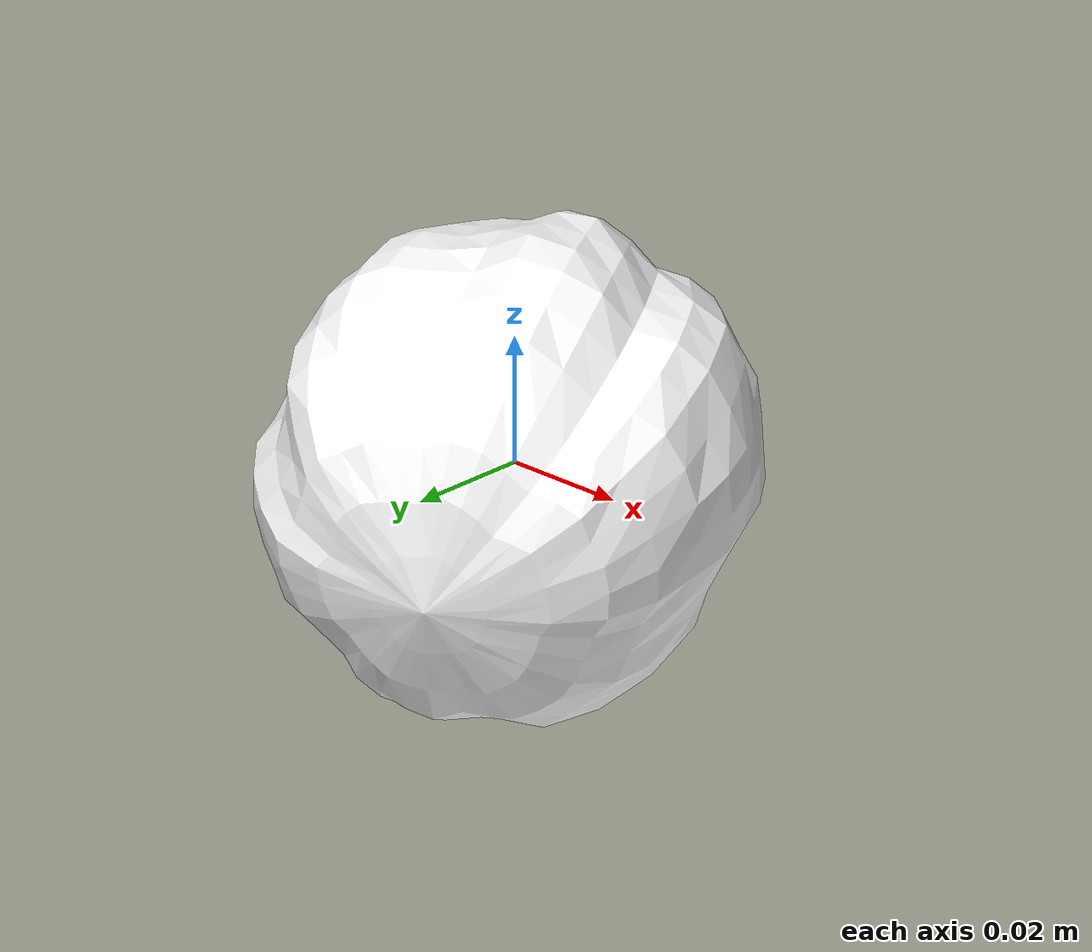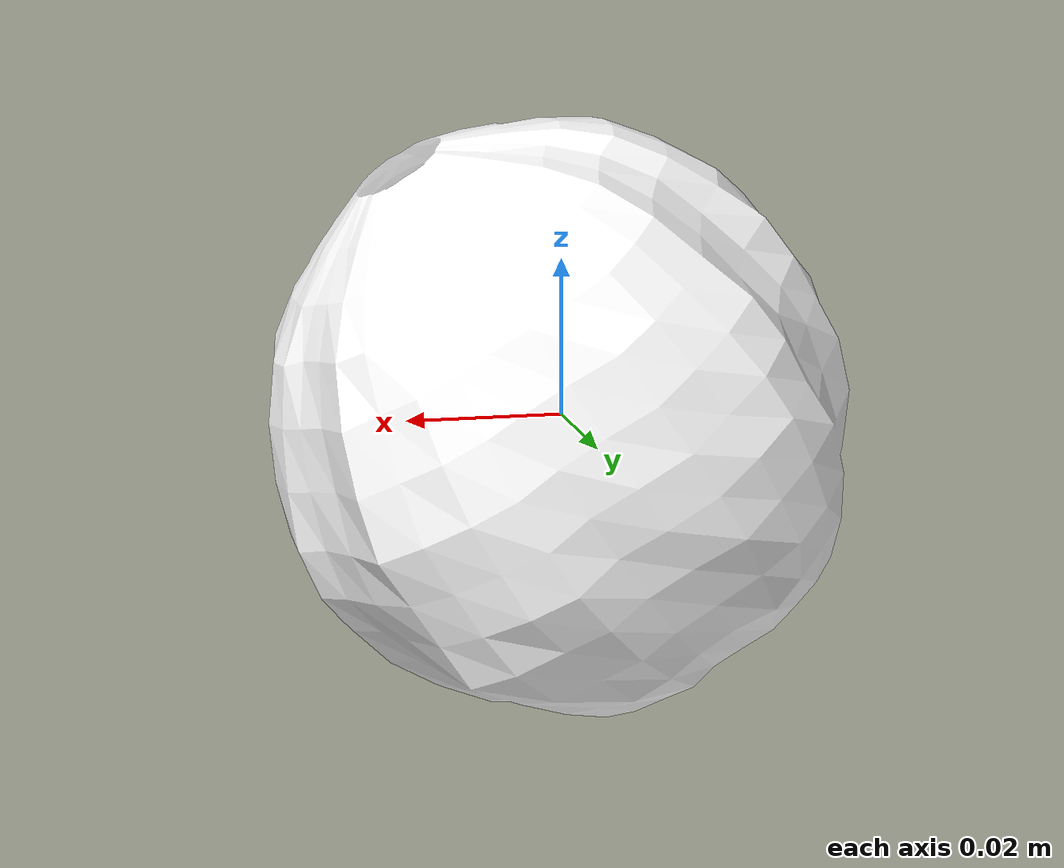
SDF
<?xml version="1.0"?>
<!-- Derived from LCAS/aoc_tomato_farm under Apache License 2.0; see SOURCE.json. -->
<sdf version="1.6">
  <model name="tomato_fruit">
    <static>true</static>
    <link name="fruit_link">
      <collision name="fruit_collision">
        <geometry><sphere><radius>0.04</radius></sphere></geometry>
      </collision>
      <visual name="fruit_visual">
        <geometry><mesh>
          <uri>model://tomato_fruit/meshes/fruit.dae</uri>
          <scale>0.08 0.08 0.08</scale>
        </mesh></geometry>
        <material>
          <ambient>1 1 1 1</ambient>
          <diffuse>1 1 1 1</diffuse>
          <pbr><metal>
            <albedo_map>model://tomato_0/materials/textures/AG15frt1.png</albedo_map>
            <metalness>0</metalness>
            <roughness>0.4</roughness>
          </metal></pbr>
        </material>
      </visual>
    </link>
  </model>
</sdf>
